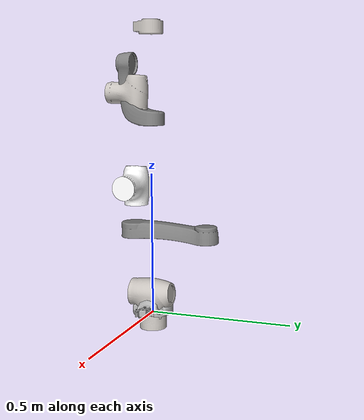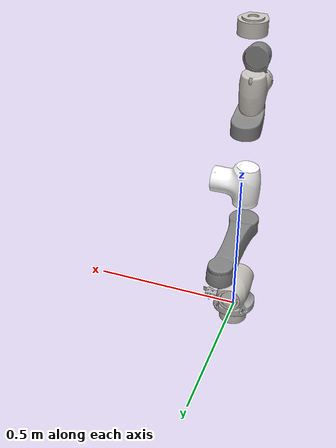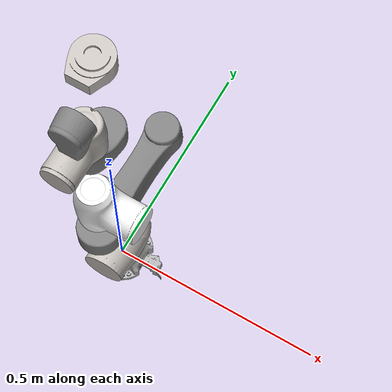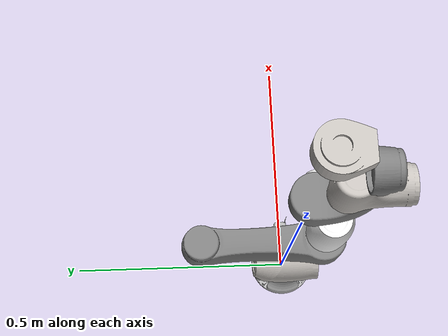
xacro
<robot
  name="elfin3" xmlns:xacro="http://www.ros.org/wiki/xacro">

  <xacro:include filename="$(find elfin_description)/urdf/materials.xacro" />

  <xacro:include filename="$(find elfin_description)/urdf/elfin_robot.gazebo" />

  <xacro:include filename="$(find elfin_description)/urdf/elfin_transmission.xacro" />

  <xacro:property name="PI" value="3.1415926535897931"/>

  <xacro:property name="density" value="3.09"/>

  <link name="world"/>

  <joint name="world_base" type="fixed">
    <origin
      xyz="0 0 0"
      rpy="0 0 -1.5708" />
    <parent
      link="world" />
    <child
      link="elfin_base_link" />
  </joint>

  <link name="elfin_base_link"/>

  <joint name="elfin_base_joint" type="fixed">
    <origin
      xyz="0 0 0"
      rpy="0 0 ${PI/2}" />
    <parent
      link="elfin_base_link" />
    <child
      link="elfin_base" />
  </joint>

 <link
    name="elfin_base">
    <inertial>
      <origin
        xyz="0.00425937844813294 -0.000389571231902992 0.00274262778667868"
        rpy="0 0 0" />
      <mass
        value="0.0268461773395224" />
      <inertia
        ixx="2.66341322206443E-05"
        ixy="5.51640996553045E-08"
        ixz="2.21112209410463E-12"
        iyy="2.67121402645769E-05"
        iyz="-3.17722287525956E-12"
        izz="5.30011200382481E-05" />
    </inertial>
    <visual>
      <origin
        xyz="0 0 0"
        rpy="0 0 0" />
      <geometry>
        <mesh
          filename="file://$(find elfin_description)/meshes/elfin3/elfin_base.STL" />
      </geometry>
      <material
        name="">
        <color
          rgba="0.686274509803922 0.686274509803922 0.686274509803922 1" />
      </material>
    </visual>
    <collision>
      <origin
        xyz="0 0 0"
        rpy="0 0 0" />
      <geometry>
        <mesh
          filename="file://$(find elfin_description)/meshes/elfin3/elfin_base.STL" />
      </geometry>
    </collision>
  </link>
  <link
    name="elfin_link1">
    <inertial>
      <origin
        xyz="-1.11474311817293E-05 -0.019295238440266 0.081643413279284"
        rpy="0 0 0" />
      <mass
        value="1.52628719338585" />
      <inertia
        ixx="0.006028902112623"
        ixy="-5.48816506919481E-07"
        ixz="-2.73302311360408E-07"
        iyy="0.00509895338088794"
        iyz="0.00146640275062038"
        izz="0.0028687934642813" />
    </inertial>
    <visual>
      <origin
        xyz="0 0 0"
        rpy="0 0 0" />
      <geometry>
        <mesh
          filename="file://$(find elfin_description)/meshes/elfin3/elfin_link1.STL" />
      </geometry>
      <material
        name="">
        <color
          rgba="0.772549019607843 0.752941176470588 0.733333333333333 1" />
      </material>
    </visual>
    <collision>
      <origin
        xyz="0 0 0"
        rpy="0 0 0" />
      <geometry>
        <mesh
          filename="file://$(find elfin_description)/meshes/elfin3/elfin_link1.STL" />
      </geometry>
    </collision>
  </link>
  <joint
    name="elfin_joint1"
    type="revolute">
    <origin
      xyz="0 0 0.0695"
      rpy="0 0 0" />
    <parent
      link="elfin_base" />
    <child
      link="elfin_link1" />
    <axis
      xyz="0 0 1" />
    <limit
      lower="-3.14"
      upper="3.14"
      effort="104"
      velocity="1.57" />
  </joint>
  <link
    name="elfin_link2">
    <inertial>
      <origin
        xyz="-3.09813419838078E-05 -0.0392725728395098 0.121906520746464"
        rpy="0 0 0" />
      <mass
        value="0.519379765009091" />
      <inertia
        ixx="0.00462941997584524"
        ixy="9.53033193206284E-08"
        ixz="1.89958745191593E-06"
        iyy="0.00485416387879526"
        iyz="-0.00019166604937554"
        izz="0.000506978474454832" />
    </inertial>
    <visual>
      <origin
        xyz="0 0 0"
        rpy="0 0 0" />
      <geometry>
        <mesh
          filename="file://$(find elfin_description)/meshes/elfin3/elfin_link2.STL" />
      </geometry>
      <material
        name="">
        <color
          rgba="0.501960784313725 0.501960784313725 0.501960784313725 1" />
      </material>
    </visual>
    <collision>
      <origin
        xyz="0 0 0"
        rpy="0 0 0" />
      <geometry>
        <mesh
          filename="file://$(find elfin_description)/meshes/elfin3/elfin_link2.STL" />
      </geometry>
    </collision>
  </link>
  <joint
    name="elfin_joint2"
    type="revolute">
    <origin
      xyz="0 -0.066 0.123"
      rpy="0 0 0" />
    <parent
      link="elfin_link1" />
    <child
      link="elfin_link2" />
    <axis
      xyz="0 -1 0" />
    <limit
      lower="-2.35"
      upper="2.35"
      effort="104"
      velocity="1.27" />
  </joint>
  <link
    name="elfin_link3">
    <inertial>
      <origin
        xyz="7.94789705792241E-06 0.0434911461385148 0.0377663456053925"
        rpy="0 0 0" />
      <mass
        value="1.07924103107593" />
      <inertia
        ixx="0.00347290093864989"
        ixy="-5.5219540256932E-07"
        ixz="-1.81596933237452E-07"
        iyy="0.0028883932232078"
        iyz="-0.000859331225721596"
        izz="0.00165138765596417" />
    </inertial>
    <visual>
      <origin
        xyz="0 0 0"
        rpy="0 0 0" />
      <geometry>
        <mesh
          filename="file://$(find elfin_description)/meshes/elfin3/elfin_link3.STL" />
      </geometry>
      <material
        name="">
        <color
          rgba="1 1 1 1" />
      </material>
    </visual>
    <collision>
      <origin
        xyz="0 0 0"
        rpy="0 0 0" />
      <geometry>
        <mesh
          filename="file://$(find elfin_description)/meshes/elfin3/elfin_link3.STL" />
      </geometry>
    </collision>
  </link>
  <joint
    name="elfin_joint3"
    type="revolute">
    <origin
      xyz="0 0.005 0.266"
      rpy="0 0 0" />
    <parent
      link="elfin_link2" />
    <child
      link="elfin_link3" />
    <axis
      xyz="0 1 0" />
    <limit
      lower="-2.61"
      upper="2.61"
      effort="69"
      velocity="1.57" />
  </joint>
  <link
    name="elfin_link4">
    <inertial>
      <origin
        xyz="3.93948157579129E-06 -0.0583766984632963 0.104324949772583"
        rpy="0 0 0" />
      <mass
        value="0.369742076927137" />
      <inertia
        ixx="0.00246788834863717"
        ixy="4.99944210740992E-08"
        ixz="-3.25489511678092E-08"
        iyy="0.00211847372798997"
        iyz="0.000668250395065579"
        izz="0.000839231486986835" />
    </inertial>
    <visual>
      <origin
        xyz="0 0 0"
        rpy="0 0 0" />
      <geometry>
        <mesh
          filename="file://$(find elfin_description)/meshes/elfin3/elfin_link4.STL" />
      </geometry>
      <material
        name="">
        <color
          rgba="0.501960784313725 0.501960784313725 0.501960784313725 1" />
      </material>
    </visual>
    <collision>
      <origin
        xyz="0 0 0"
        rpy="0 0 0" />
      <geometry>
        <mesh
          filename="file://$(find elfin_description)/meshes/elfin3/elfin_link4.STL" />
      </geometry>
    </collision>
  </link>
  <joint
    name="elfin_joint4"
    type="revolute">
    <origin
      xyz="0 0.061 0.101"
      rpy="0 0 0" />
    <parent
      link="elfin_link3" />
    <child
      link="elfin_link4" />
    <axis
      xyz="0 0 1" />
    <limit
      lower="-3.14"
      upper="3.14"
      effort="69"
      velocity="1.57" />
  </joint>
  <link
    name="elfin_link5">
    <inertial>
      <origin
        xyz="-1.43602737885348E-06 0.0400732712700223 0.0365459315107893"
        rpy="0 0 0" />
      <mass
        value="0.810519795979025" />
      <inertia
        ixx="0.00228900919014725"
        ixy="3.53045982931884E-08"
        ixz="2.29268789681775E-08"
        iyy="0.00188329109495946"
        iyz="-0.000564395858742294"
        izz="0.00101935359998985" />
    </inertial>
    <visual>
      <origin
        xyz="0 0 0"
        rpy="0 0 0" />
      <geometry>
        <mesh
          filename="file://$(find elfin_description)/meshes/elfin3/elfin_link5.STL" />
      </geometry>
      <material
        name="">
        <color
          rgba="0.772549019607843 0.752941176470588 0.733333333333333 1" />
      </material>
    </visual>
    <collision>
      <origin
        xyz="0 0 0"
        rpy="0 0 0" />
      <geometry>
        <mesh
          filename="file://$(find elfin_description)/meshes/elfin3/elfin_link5.STL" />
      </geometry>
    </collision>
  </link>
  <joint
    name="elfin_joint5"
    type="revolute">
    <origin
      xyz="0 -0.056 0.223"
      rpy="0 0 0" />
    <parent
      link="elfin_link4" />
    <child
      link="elfin_link5" />
    <axis
      xyz="0 1 0" />
    <limit
      lower="-2.56"
      upper="2.56"
      effort="34"
      velocity="1.57" />
  </joint>
  <link
    name="elfin_link6">
    <inertial>
      <origin
        xyz="3.20814749367106E-05 -0.00725494085500073 0.0375620352744778"
        rpy="0 0 0" />
      <mass
        value="0.11342880515576" />
      <inertia
        ixx="7.66530991301819E-05"
        ixy="-1.83940471442645E-07"
        ixz="-4.80914267075654E-08"
        iyy="7.49230832326719E-05"
        iyz="-2.34292724113658E-06"
        izz="0.000127800839988254" />
    </inertial>
    <visual>
      <origin
        xyz="0 0 0"
        rpy="0 0 0" />
      <geometry>
        <mesh
          filename="file://$(find elfin_description)/meshes/elfin3/elfin_link6.STL" />
      </geometry>
      <material
        name="">
        <color
          rgba="0.776470588235294 0.756862745098039 0.737254901960784 1" />
      </material>
    </visual>
    <collision>
      <origin
        xyz="0 0 0"
        rpy="0 0 0" />
      <geometry>
        <mesh
          filename="file://$(find elfin_description)/meshes/elfin3/elfin_link6.STL" />
      </geometry>
    </collision>
  </link>
  <joint
    name="elfin_joint6"
    type="revolute">
    <origin
      xyz="0 0.056 0.096"
      rpy="0 0 0" />
    <parent
      link="elfin_link5" />
    <child
      link="elfin_link6" />
    <axis
      xyz="0 0 1" />
    <limit
      lower="-3.14"
      upper="3.14"
      effort="34"
      velocity="1.57" />
  </joint>

  <link name="elfin_end_link"/>

  <joint name="elfin_end_joint" type="fixed">
    <origin
      xyz="0 0 0.059"
      rpy="0 0 0" />
    <parent
      link="elfin_link6" />
    <child
      link="elfin_end_link" />
  </joint>

  <link name="elfin_dummy_gripper"/>

  <joint name="elfin_dummy_joint" type="fixed">
    <origin
      xyz="0 -0.111 0"
      rpy="${PI/2} ${-PI/2} 0" />
    <parent
      link="elfin_link6" />
    <child
      link="elfin_dummy_gripper" />
  </joint>

</robot>
